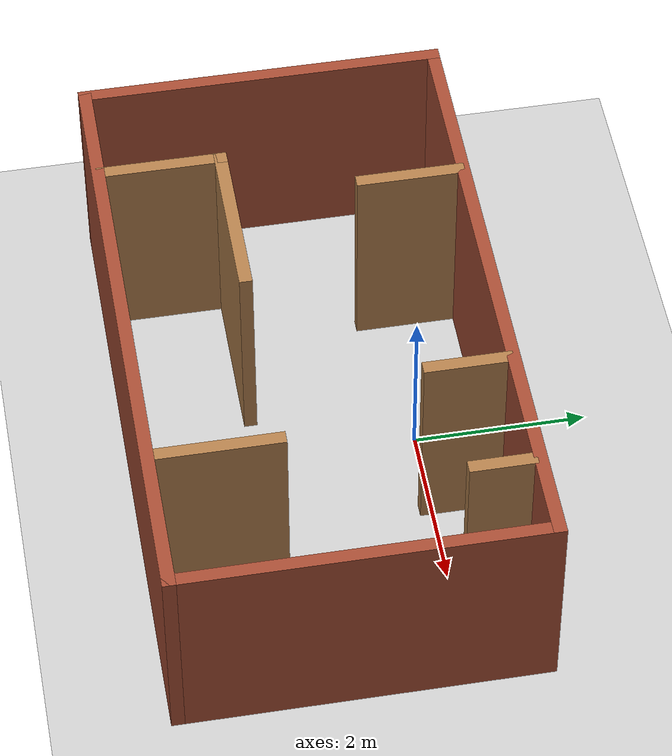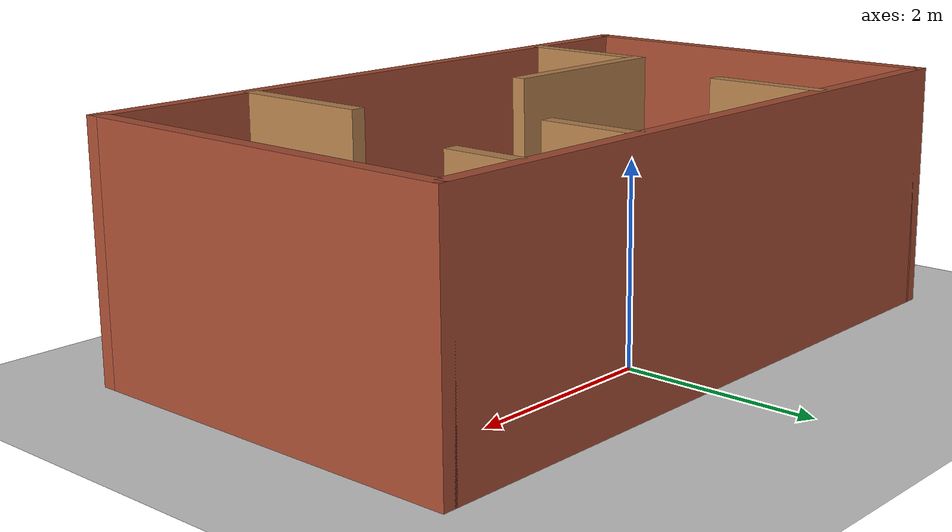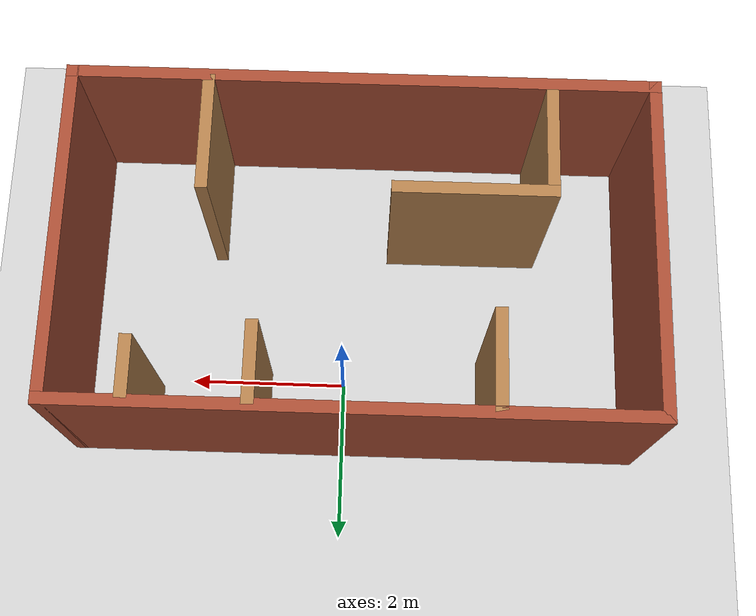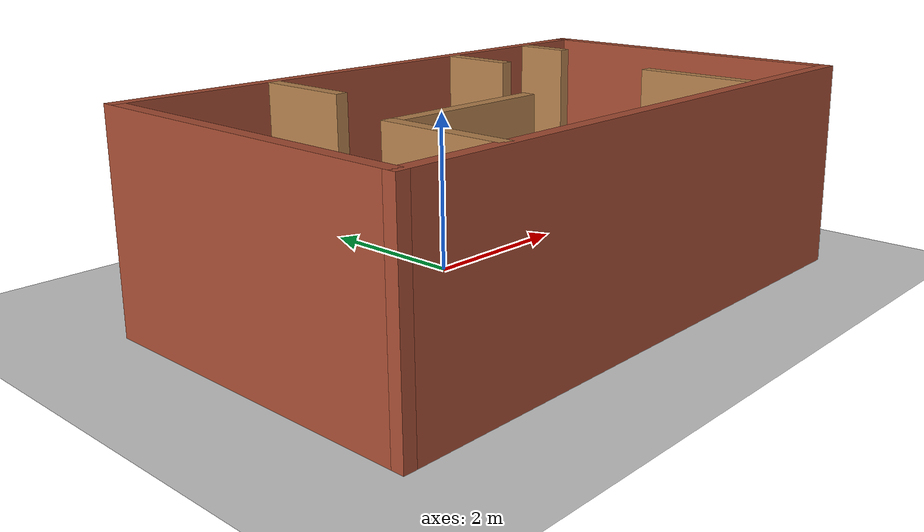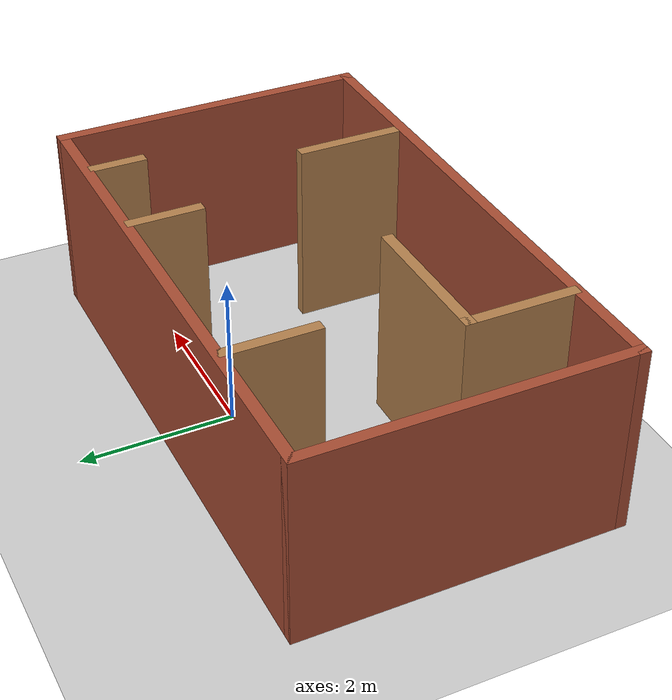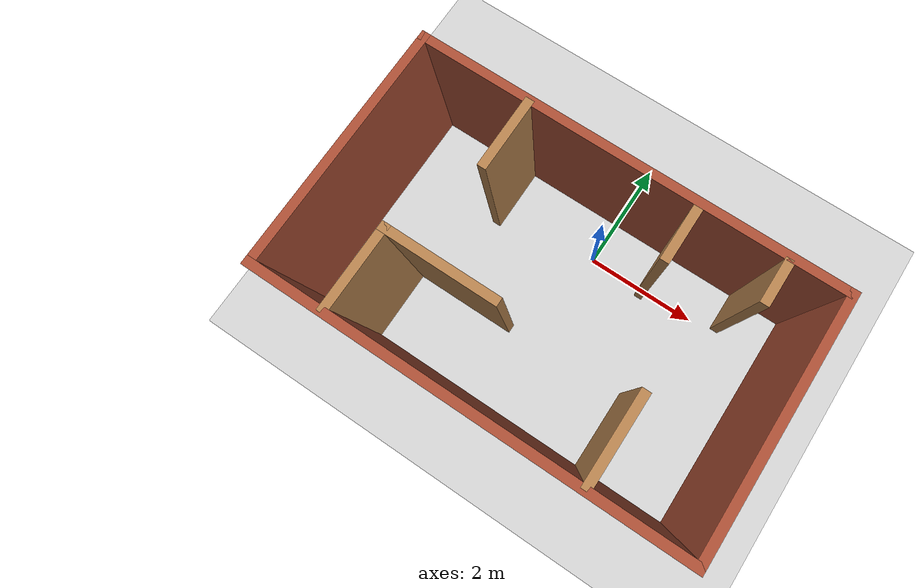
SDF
<sdf version="1.6">
 <world name="default">
  <light name="sun" type="directional">
   <pose>0 0 10 0 -0 0</pose>
   <diffuse>0.8 0.8 0.8 1</diffuse>
   <specular>0.2 0.2 0.2 1</specular>
   <attenuation>
    <range>1000</range>
    <constant>0.9</constant>
    <linear>0.01</linear>
    <quadratic>0.001</quadratic>
   </attenuation>
   <direction>-0.5 0.1 -0.9</direction>
  </light>
  <model name="ground_plane">
   <static>1</static>
   <link name="link">
    <collision name="collision">
     <geometry><plane><normal>0 0 1</normal><size>100 100</size></plane></geometry>
     <surface>
      <contact><collide_bitmask>65535</collide_bitmask></contact>
      <friction><ode><mu>100</mu><mu2>50</mu2></ode></friction>
     </surface>
    </collision>
    <visual name="visual">
     <cast_shadows>0</cast_shadows>
     <geometry><plane><normal>0 0 1</normal><size>100 100</size></plane></geometry>
     <material>
      <script><uri>file://media/materials/scripts/gazebo.material</uri><name>Gazebo/Grey</name></script>
     </material>
    </visual>
   </link>
  </model>
  <gravity>0 0 -9.8</gravity>
  <magnetic_field>6e-06 2.3e-05 -4.2e-05</magnetic_field>
  <atmosphere type="adiabatic"/>
  <physics name="default_physics" default="0" type="ode">
   <max_step_size>0.001</max_step_size>
   <real_time_factor>1</real_time_factor>
   <real_time_update_rate>1000</real_time_update_rate>
  </physics>
  <scene><ambient>0.4 0.4 0.4 1</ambient><background>0.7 0.7 0.7 1</background><shadows>1</shadows></scene>
  <spherical_coordinates>
   <surface_model>EARTH_WGS84</surface_model>
   <latitude_deg>0</latitude_deg>
   <longitude_deg>0</longitude_deg>
   <elevation>0</elevation>
   <heading_deg>0</heading_deg>
  </spherical_coordinates>
  <model name="Untitled">
   <pose>-0.153651 -1.18656 0 0 -0 0</pose>
   <link name="Wall_1">
    <collision name="Wall_1_Collision">
     <geometry><box><size>7.25 0.15 2.5</size></box></geometry>
     <pose>0 0 1.25 0 -0 0</pose>
    </collision>
    <visual name="Wall_1_Visual">
     <pose>0 0 1.25 0 -0 0</pose>
     <geometry><box><size>7.25 0.15 2.5</size></box></geometry>
     <material>
      <script><uri>file://media/materials/scripts/gazebo.material</uri><name>Gazebo/Bricks</name></script>
      <ambient>1 1 1 1</ambient>
     </material>
     <meta><layer>0</layer></meta>
    </visual>
    <pose>0 2.05 0 0 -0 0</pose>
   </link>
   <link name="Wall_10">
    <collision name="Wall_10_Collision">
     <geometry><box><size>0.75 0.15 2.5</size></box></geometry>
     <pose>0 0 1.25 0 -0 0</pose>
    </collision>
    <visual name="Wall_10_Visual">
     <pose>0 0 1.25 0 -0 0</pose>
     <geometry><box><size>0.75 0.15 2.5</size></box></geometry>
     <material>
      <script><uri>file://media/materials/scripts/gazebo.material</uri><name>Gazebo/Wood</name></script>
      <ambient>1 1 1 1</ambient>
     </material>
     <meta><layer>0</layer></meta>
    </visual>
    <pose>2.60954 1.64354 0 0 0 -1.5708</pose>
   </link>
   <link name="Wall_12">
    <collision name="Wall_12_Collision">
     <geometry><box><size>1.5 0.15 2.5</size></box></geometry>
     <pose>0 0 1.25 0 -0 0</pose>
    </collision>
    <visual name="Wall_12_Visual">
     <pose>0 0 1.25 0 -0 0</pose>
     <geometry><box><size>1.5 0.15 2.5</size></box></geometry>
     <material>
      <script><uri>file://media/materials/scripts/gazebo.material</uri><name>Gazebo/Wood</name></script>
      <ambient>1 1 1 1</ambient>
     </material>
     <meta><layer>0</layer></meta>
    </visual>
    <pose>-2.30288 -1.32053 0 0 -0 1.5708</pose>
   </link>
   <link name="Wall_13">
    <collision name="Wall_13_Collision">
     <geometry><box><size>2 0.15 2.5</size></box></geometry>
     <pose>0 0 1.25 0 -0 0</pose>
    </collision>
    <visual name="Wall_13_Visual">
     <pose>0 0 1.25 0 -0 0</pose>
     <geometry><box><size>2 0.15 2.5</size></box></geometry>
     <material>
      <script><uri>file://media/materials/scripts/gazebo.material</uri><name>Gazebo/Wood</name></script>
      <ambient>1 1 1 1</ambient>
     </material>
     <meta><layer>0</layer></meta>
    </visual>
    <pose>-1.37788 -0.645528 0 0 -0 0</pose>
   </link>
   <link name="Wall_15">
    <collision name="Wall_15_Collision">
     <geometry><box><size>1.5 0.15 2.5</size></box></geometry>
     <pose>0 0 1.25 0 -0 0</pose>
    </collision>
    <visual name="Wall_15_Visual">
     <pose>0 0 1.25 0 -0 0</pose>
     <geometry><box><size>1.5 0.15 2.5</size></box></geometry>
     <material>
      <script><uri>file://media/materials/scripts/gazebo.material</uri><name>Gazebo/Wood</name></script>
      <ambient>1 1 1 1</ambient>
     </material>
     <meta><layer>0</layer></meta>
    </visual>
    <pose>1.87952 -1.30532 0 0 -0 1.5708</pose>
   </link>
   <link name="Wall_2">
    <collision name="Wall_2_Collision">
     <geometry><box><size>4.25 0.15 2.5</size></box></geometry>
     <pose>0 0 1.25 0 -0 0</pose>
    </collision>
    <visual name="Wall_2_Visual">
     <pose>0 0 1.25 0 -0 0</pose>
     <geometry><box><size>4.25 0.15 2.5</size></box></geometry>
     <material>
      <script><uri>file://media/materials/scripts/gazebo.material</uri><name>Gazebo/Bricks</name></script>
      <ambient>1 1 1 1</ambient>
     </material>
     <meta><layer>0</layer></meta>
    </visual>
    <pose>3.55 0 0 0 0 -1.5708</pose>
   </link>
   <link name="Wall_3">
    <collision name="Wall_3_Collision">
     <geometry><box><size>7.25 0.15 2.5</size></box></geometry>
     <pose>0 0 1.25 0 -0 0</pose>
    </collision>
    <visual name="Wall_3_Visual">
     <pose>0 0 1.25 0 -0 0</pose>
     <geometry><box><size>7.25 0.15 2.5</size></box></geometry>
     <material>
      <script><uri>file://media/materials/scripts/gazebo.material</uri><name>Gazebo/Bricks</name></script>
      <ambient>1 1 1 1</ambient>
     </material>
     <meta><layer>0</layer></meta>
    </visual>
    <pose>0 -2.05 0 0 -0 3.14159</pose>
   </link>
   <link name="Wall_4">
    <collision name="Wall_4_Collision">
     <geometry><box><size>4.25 0.15 2.5</size></box></geometry>
     <pose>0 0 1.25 0 -0 0</pose>
    </collision>
    <visual name="Wall_4_Visual">
     <pose>0 0 1.25 0 -0 0</pose>
     <geometry><box><size>4.25 0.15 2.5</size></box></geometry>
     <material>
      <script><uri>file://media/materials/scripts/gazebo.material</uri><name>Gazebo/Bricks</name></script>
      <ambient>1 1 1 1</ambient>
     </material>
     <meta><layer>0</layer></meta>
    </visual>
    <pose>-3.55 0 0 0 -0 1.5708</pose>
   </link>
   <link name="Wall_6">
    <collision name="Wall_6_Collision">
     <geometry><box><size>1.25 0.15 2.5</size></box></geometry>
     <pose>0 0 1.25 0 -0 0</pose>
    </collision>
    <visual name="Wall_6_Visual">
     <pose>0 0 1.25 0 -0 0</pose>
     <geometry><box><size>1.25 0.15 2.5</size></box></geometry>
     <material>
      <script><uri>file://media/materials/scripts/gazebo.material</uri><name>Gazebo/Wood</name></script>
      <ambient>1 1 1 1</ambient>
     </material>
     <meta><layer>0</layer></meta>
    </visual>
    <pose>-1.67932 1.43917 0 0 0 -1.5708</pose>
   </link>
   <link name="Wall_8">
    <collision name="Wall_8_Collision">
     <geometry><box><size>1 0.15 2.5</size></box></geometry>
     <pose>0 0 1.25 0 -0 0</pose>
    </collision>
    <visual name="Wall_8_Visual">
     <pose>0 0 1.25 0 -0 0</pose>
     <geometry><box><size>1 0.15 2.5</size></box></geometry>
     <material>
      <script><uri>file://media/materials/scripts/gazebo.material</uri><name>Gazebo/Wood</name></script>
      <ambient>1 1 1 1</ambient>
     </material>
     <meta><layer>0</layer></meta>
    </visual>
    <pose>1.17992 1.54896 0 0 0 -1.5708</pose>
   </link>
   <static>1</static>
  </model>
 </world>
</sdf>
